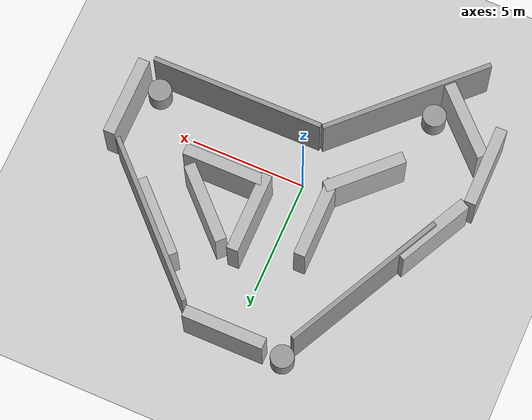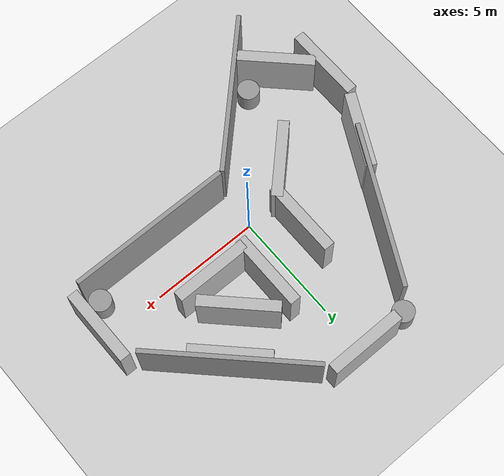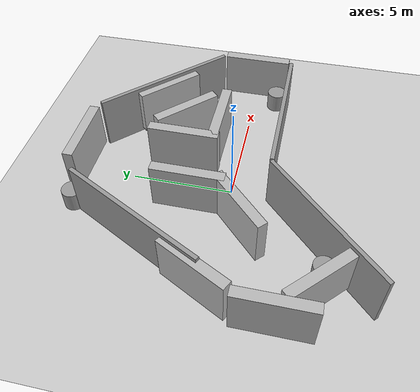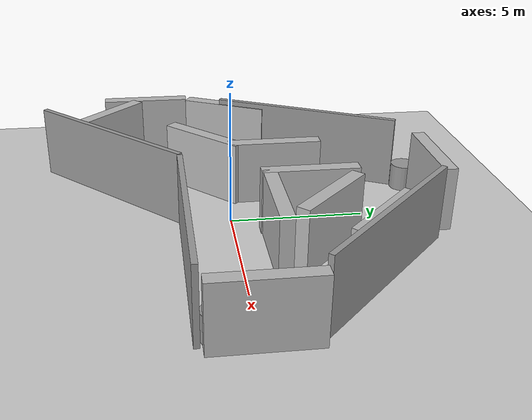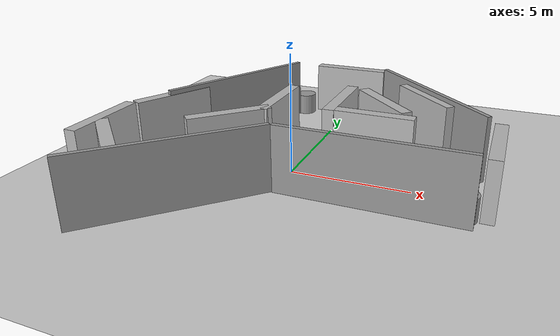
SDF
<sdf version="1.6">
 <world name="default">
  <light name="sun" type="directional">
   <pose>0 0 10 0 -0 0</pose>
   <diffuse>0.8 0.8 0.8 1</diffuse>
   <specular>0.1 0.1 0.1 1</specular>
   <attenuation>
    <range>1000</range>
    <constant>0.9</constant>
    <linear>0.01</linear>
    <quadratic>0.001</quadratic>
   </attenuation>
   <direction>-0.5 0.5 -1</direction>
  </light>
  <model name="ground_plane">
   <static>1</static>
   <link name="link">
    <collision name="collision">
     <geometry><plane><normal>0 0 1</normal><size>100 100</size></plane></geometry>
     <surface><friction><ode><mu>100</mu><mu2>50</mu2></ode></friction></surface>
    </collision>
    <visual name="visual">
     <cast_shadows>0</cast_shadows>
     <geometry><plane><normal>0 0 1</normal><size>100 100</size></plane></geometry>
     <material>
      <script><uri>file://media/materials/scripts/gazebo.material</uri><name>Gazebo/Grey</name></script>
     </material>
    </visual>
   </link>
  </model>
  <gravity>0 0 -9.8</gravity>
  <magnetic_field>6e-06 2.3e-05 -4.2e-05</magnetic_field>
  <atmosphere type="adiabatic"/>
  <physics name="default_physics" default="0" type="ode">
   <max_step_size>0.001</max_step_size>
   <real_time_factor>1</real_time_factor>
   <real_time_update_rate>1000</real_time_update_rate>
  </physics>
  <scene><ambient>0.4 0.4 0.4 1</ambient><background>0.7 0.7 0.7 1</background><shadows>1</shadows></scene>
  <spherical_coordinates>
   <surface_model>EARTH_WGS84</surface_model>
   <latitude_deg>0</latitude_deg>
   <longitude_deg>0</longitude_deg>
   <elevation>0</elevation>
   <heading_deg>0</heading_deg>
  </spherical_coordinates>
  <model name="grey_wall_0">
   <static>1</static>
   <link name="link">
    <pose>0 0 1.4 0 -0 0</pose>
    <collision name="collision"><geometry><box><size>7.5 0.2 2.8</size></box></geometry></collision>
    <visual name="visual">
     <cast_shadows>0</cast_shadows>
     <geometry><box><size>7.5 0.2 2.8</size></box></geometry>
     <material>
      <script>
       <uri>model://grey_wall/materials/scripts</uri>
       <uri>model://grey_wall/materials/textures</uri>
       <name>vrc/grey_wall</name>
      </script>
     </material>
    </visual>
   </link>
   <pose>3.74966 -1.83578 0 0 -0 0</pose>
  </model>
  <model name="mywall0">
   <static>1</static>
   <link name="link">
    <pose>0 0 1.4 0 -0 0</pose>
    <collision name="collision"><geometry><box><size>3.5 0.5 2.4</size></box></geometry></collision>
    <visual name="visual">
     <cast_shadows>0</cast_shadows>
     <geometry><box><size>3.5 0.5 2.4</size></box></geometry>
     <material>
      <script>
       <uri>model://mywall0/materials/scripts</uri>
       <uri>model://mywall0/materials/textures</uri>
       <name>vrc/mywall0</name>
      </script>
     </material>
    </visual>
   </link>
   <pose>3 1.21571 0 0 -0 0</pose>
  </model>
  <model name="mywall0_0_clone_0">
   <static>1</static>
   <link name="link">
    <pose>0 0 1.4 0 -0 0</pose>
    <collision name="collision"><geometry><box><size>3.5 0.5 2.4</size></box></geometry></collision>
    <visual name="visual">
     <cast_shadows>0</cast_shadows>
     <geometry><box><size>3.5 0.5 2.4</size></box></geometry>
     <material>
      <script>
       <uri>model://mywall0/materials/scripts</uri>
       <uri>model://mywall0/materials/textures</uri>
       <name>vrc/mywall0</name>
      </script>
     </material>
    </visual>
   </link>
   <pose>1.2311 2.67698 0 0 -0 1.57</pose>
  </model>
  <model name="grey_wall_1_clone">
   <static>1</static>
   <link name="link">
    <pose>0 0 1.4 0 -0 0</pose>
    <collision name="collision"><geometry><box><size>7.5 0.2 2.8</size></box></geometry></collision>
    <visual name="visual">
     <cast_shadows>0</cast_shadows>
     <geometry><box><size>7.5 0.2 2.8</size></box></geometry>
     <material>
      <script>
       <uri>model://grey_wall/materials/scripts</uri>
       <uri>model://grey_wall/materials/textures</uri>
       <name>vrc/grey_wall</name>
      </script>
     </material>
    </visual>
   </link>
   <pose>-2.75238 -4.45531 0 0 -0 0.78</pose>
  </model>
  <model name="mywall0_0_clone_1_clone">
   <static>1</static>
   <link name="link">
    <pose>0 0 1.4 0 -0 0</pose>
    <collision name="collision"><geometry><box><size>3.5 0.5 2.4</size></box></geometry></collision>
    <visual name="visual">
     <cast_shadows>0</cast_shadows>
     <geometry><box><size>3.5 0.5 2.4</size></box></geometry>
     <material>
      <script>
       <uri>model://mywall0/materials/scripts</uri>
       <uri>model://mywall0/materials/textures</uri>
       <name>vrc/mywall0</name>
      </script>
     </material>
    </visual>
   </link>
   <pose>4.62404 4.35704 0 0 0 -0.78</pose>
  </model>
  <model name="grey_wall_3_clone_clone_clone">
   <static>1</static>
   <link name="link">
    <pose>0 0 1.4 0 -0 0</pose>
    <collision name="collision"><geometry><box><size>7.5 0.2 2.8</size></box></geometry></collision>
    <visual name="visual">
     <cast_shadows>0</cast_shadows>
     <geometry><box><size>7.5 0.2 2.8</size></box></geometry>
     <material>
      <script>
       <uri>model://grey_wall/materials/scripts</uri>
       <uri>model://grey_wall/materials/textures</uri>
       <name>vrc/grey_wall</name>
      </script>
     </material>
    </visual>
   </link>
   <pose>-4.18285 3.55481 0 0 -0 1.1</pose>
  </model>
  <model name="unit_cylinder_0">
   <pose>-2.2289 7.32927 0.499998 3e-06 -1e-06 -0.164296</pose>
   <link name="link">
    <inertial>
     <mass>1</mass>
     <inertia><ixx>0.145833</ixx><ixy>0</ixy><ixz>0</ixz><iyy>0.145833</iyy><iyz>0</iyz><izz>0.125</izz></inertia>
    </inertial>
    <collision name="collision">
     <geometry><cylinder><radius>0.5</radius><length>1</length></cylinder></geometry>
    </collision>
    <visual name="visual">
     <geometry><cylinder><radius>0.5</radius><length>1</length></cylinder></geometry>
     <material>
      <script><name>Gazebo/Grey</name><uri>file://media/materials/scripts/gazebo.material</uri></script>
     </material>
    </visual>
   </link>
  </model>
  <model name="mywall1_1_clone_clone">
   <static>1</static>
   <link name="link">
    <pose>0 0 1.4 0 -0 0</pose>
    <collision name="collision"><geometry><box><size>3.5 0.5 2.4</size></box></geometry></collision>
    <visual name="visual">
     <cast_shadows>0</cast_shadows>
     <geometry><box><size>3.5 0.5 2.4</size></box></geometry>
     <material>
      <script>
       <uri>model://mywall1/materials/scripts</uri>
       <uri>model://mywall1/materials/textures</uri>
       <name>vrc/mywall1</name>
      </script>
     </material>
    </visual>
   </link>
   <pose>-6.85678 -2.96165 0 0 -0 1.57</pose>
  </model>
  <model name="mywall0_1_clone_0">
   <static>1</static>
   <link name="link">
    <pose>0 0 1.4 0 -0 0</pose>
    <collision name="collision"><geometry><box><size>3.5 0.5 2.4</size></box></geometry></collision>
    <visual name="visual">
     <cast_shadows>0</cast_shadows>
     <geometry><box><size>3.5 0.5 2.4</size></box></geometry>
     <material>
      <script>
       <uri>model://mywall0/materials/scripts</uri>
       <uri>model://mywall0/materials/textures</uri>
       <name>vrc/mywall0</name>
      </script>
     </material>
    </visual>
   </link>
   <pose>-5.88184 0.429419 0 0 -0 1.1</pose>
  </model>
  <model name="mywall0_0_clone_0_clone">
   <static>1</static>
   <link name="link">
    <pose>0 0 1.4 0 -0 0</pose>
    <collision name="collision"><geometry><box><size>3.5 0.5 2.4</size></box></geometry></collision>
    <visual name="visual">
     <cast_shadows>0</cast_shadows>
     <geometry><box><size>3.5 0.5 2.4</size></box></geometry>
     <material>
      <script>
       <uri>model://mywall0/materials/scripts</uri>
       <uri>model://mywall0/materials/textures</uri>
       <name>vrc/mywall0</name>
      </script>
     </material>
    </visual>
   </link>
   <pose>7.91218 0.071707 0 0 -0 1.57</pose>
  </model>
  <model name="grey_wall_3_clone_clone">
   <static>1</static>
   <link name="link">
    <pose>0 0 1.4 0 -0 0</pose>
    <collision name="collision"><geometry><box><size>7.5 0.2 2.8</size></box></geometry></collision>
    <visual name="visual">
     <cast_shadows>0</cast_shadows>
     <geometry><box><size>7.5 0.2 2.8</size></box></geometry>
     <material>
      <script>
       <uri>model://grey_wall/materials/scripts</uri>
       <uri>model://grey_wall/materials/textures</uri>
       <name>vrc/grey_wall</name>
      </script>
     </material>
    </visual>
   </link>
   <pose>4.77443 4.55358 0 0 0 -0.78</pose>
  </model>
  <model name="mywall1_1_clone">
   <static>1</static>
   <link name="link">
    <pose>0 0 1.4 0 -0 0</pose>
    <collision name="collision"><geometry><box><size>3.5 0.5 2.4</size></box></geometry></collision>
    <visual name="visual">
     <cast_shadows>0</cast_shadows>
     <geometry><box><size>3.5 0.5 2.4</size></box></geometry>
     <material>
      <script>
       <uri>model://mywall1/materials/scripts</uri>
       <uri>model://mywall1/materials/textures</uri>
       <name>vrc/mywall1</name>
      </script>
     </material>
    </visual>
   </link>
   <pose>0.217393 7.51781 0 0 -0 0</pose>
  </model>
  <model name="mywall0_0_clone_0_clone_0">
   <static>1</static>
   <link name="link">
    <pose>0 0 1.4 0 -0 0</pose>
    <collision name="collision"><geometry><box><size>3.5 0.5 2.4</size></box></geometry></collision>
    <visual name="visual">
     <cast_shadows>0</cast_shadows>
     <geometry><box><size>3.5 0.5 2.4</size></box></geometry>
     <material>
      <script>
       <uri>model://mywall0/materials/scripts</uri>
       <uri>model://mywall0/materials/textures</uri>
       <name>vrc/mywall0</name>
      </script>
     </material>
    </visual>
   </link>
   <pose>-1.35405 1.81428 0 0 -0 1.57</pose>
  </model>
  <model name="mywall1_clone">
   <static>1</static>
   <link name="link">
    <pose>0 0 1.4 0 -0 0</pose>
    <collision name="collision"><geometry><box><size>3.5 0.5 2.4</size></box></geometry></collision>
    <visual name="visual">
     <cast_shadows>0</cast_shadows>
     <geometry><box><size>3.5 0.5 2.4</size></box></geometry>
     <material>
      <script>
       <uri>model://mywall1/materials/scripts</uri>
       <uri>model://mywall1/materials/textures</uri>
       <name>vrc/mywall1</name>
      </script>
     </material>
    </visual>
   </link>
   <pose>3.04998 3.00967 0 0 0 -0.78</pose>
  </model>
  <model name="unit_cylinder_1">
   <pose>7.08734 -1.23577 0.5 0 -0 0</pose>
   <link name="link">
    <inertial>
     <mass>1</mass>
     <inertia><ixx>0.145833</ixx><ixy>0</ixy><ixz>0</ixz><iyy>0.145833</iyy><iyz>0</iyz><izz>0.125</izz></inertia>
    </inertial>
    <collision name="collision">
     <geometry><cylinder><radius>0.5</radius><length>1</length></cylinder></geometry>
    </collision>
    <visual name="visual">
     <geometry><cylinder><radius>0.5</radius><length>1</length></cylinder></geometry>
     <material>
      <script><name>Gazebo/Grey</name><uri>file://media/materials/scripts/gazebo.material</uri></script>
     </material>
    </visual>
   </link>
  </model>
  <model name="mywall0_0_clone_1_clone_0_clone">
   <static>1</static>
   <link name="link">
    <pose>0 0 1.4 0 -0 0</pose>
    <collision name="collision"><geometry><box><size>3.5 0.5 2.4</size></box></geometry></collision>
    <visual name="visual">
     <cast_shadows>0</cast_shadows>
     <geometry><box><size>3.5 0.5 2.4</size></box></geometry>
     <material>
      <script>
       <uri>model://mywall0/materials/scripts</uri>
       <uri>model://mywall0/materials/textures</uri>
       <name>vrc/mywall0</name>
      </script>
     </material>
    </visual>
   </link>
   <pose>-5.35309 -4.53231 0 0 0 -0.78</pose>
  </model>
  <model name="unit_cylinder_2">
   <pose>-3.96497 -4.75317 0.499993 -3e-06 -3e-06 0</pose>
   <link name="link">
    <inertial>
     <mass>1</mass>
     <inertia><ixx>0.145833</ixx><ixy>0</ixy><ixz>0</ixz><iyy>0.145833</iyy><iyz>0</iyz><izz>0.125</izz></inertia>
    </inertial>
    <collision name="collision">
     <geometry><cylinder><radius>0.5</radius><length>1</length></cylinder></geometry>
    </collision>
    <visual name="visual">
     <geometry><cylinder><radius>0.5</radius><length>1</length></cylinder></geometry>
     <material>
      <script><name>Gazebo/Grey</name><uri>file://media/materials/scripts/gazebo.material</uri></script>
     </material>
    </visual>
   </link>
  </model>
  <model name="mywall1_0_clone_clone_clone_clone">
   <static>1</static>
   <link name="link">
    <pose>0 0 1.4 0 -0 0</pose>
    <collision name="collision"><geometry><box><size>3.5 0.5 2.4</size></box></geometry></collision>
    <visual name="visual">
     <cast_shadows>0</cast_shadows>
     <geometry><box><size>3.5 0.5 2.4</size></box></geometry>
     <material>
      <script>
       <uri>model://mywall1/materials/scripts</uri>
       <uri>model://mywall1/materials/textures</uri>
       <name>vrc/mywall1</name>
      </script>
     </material>
    </visual>
   </link>
   <pose>-2.40203 -0.758921 0 0 -0 0.78</pose>
  </model>
 </world>
</sdf>
